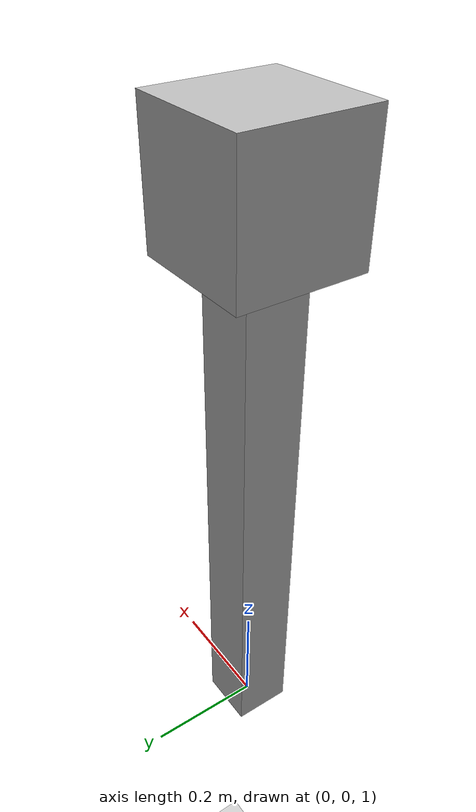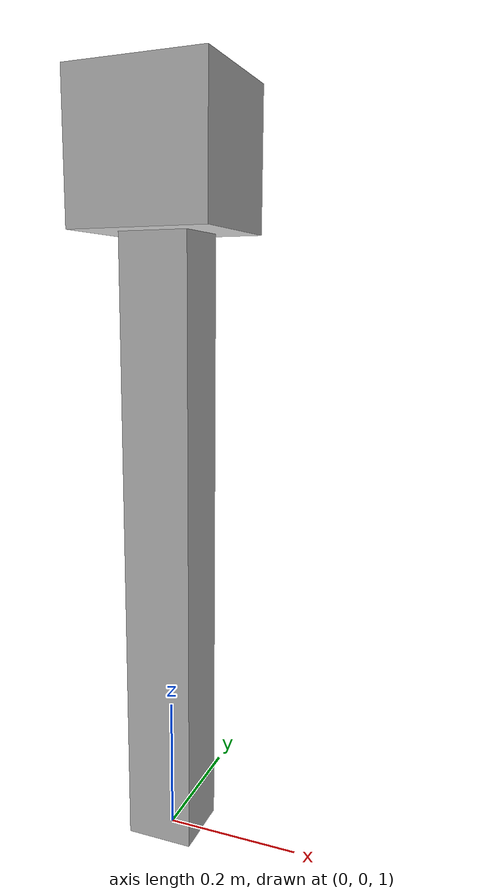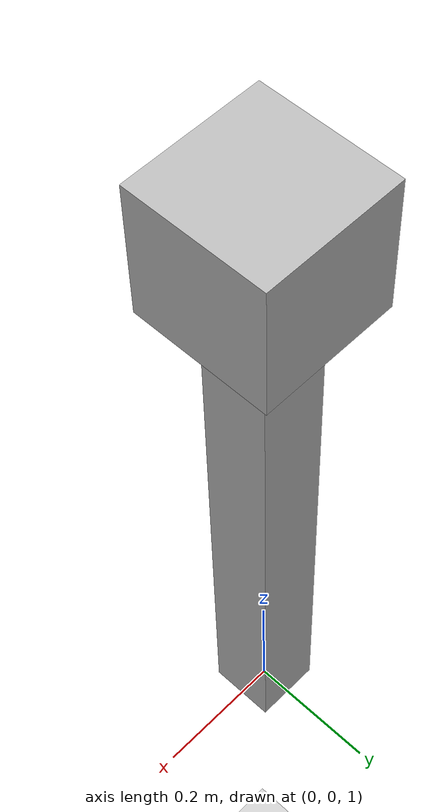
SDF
<?xml version="1.0"?>
<sdf version="1.7">
  <world name="empty">
    <physics name="1ms" type="ignored">
      <max_step_size>0.02</max_step_size>
      <real_time_factor>1.0</real_time_factor>
    </physics>
    <plugin filename="ignition-gazebo-physics-system" name="ignition::gazebo::systems::Physics"></plugin>
    <plugin filename="ignition-gazebo-scene-broadcaster-system" name="ignition::gazebo::systems::SceneBroadcaster"></plugin>
    <plugin filename="ignition-gazebo-user-commands-system" name="ignition::gazebo::systems::UserCommands"></plugin>
    <light type="directional" name="sun">
      <cast_shadows>false</cast_shadows>
      <pose>0 0 10 0 0 0</pose>
      <diffuse>0.8 0.8 0.8 1</diffuse>
      <direction>-0.5 0.1 -0.9</direction>
    </light>
    <model name="ground_plane">
      <static>true</static>
      <link name="link">
        <collision name="collision">
          <geometry><plane><normal>0 0 1</normal></plane></geometry>
        </collision>
        <visual name="visual">
          <geometry><plane><normal>0 0 1</normal><size>10 10</size></plane></geometry>
        </visual>
      </link>
    </model>

    <model name="pendulum">
      <pose>0 0 2 0 0 0</pose>
      <link name="base">
        <inertial><mass>1</mass><inertia><ixx>0.006667</ixx><iyy>0.006667</iyy><izz>0.006667</izz></inertia></inertial>
        <visual name="v"><geometry><box><size>0.2 0.2 0.2</size></box></geometry></visual>
        <collision name="c"><geometry><box><size>0.2 0.2 0.2</size></box></geometry></collision>
      </link>
      <link name="arm">
        <pose>0 0 -0.5 0 0 0</pose>
        <inertial><mass>1</mass><inertia><ixx>0.084167</ixx><iyy>0.084167</iyy><izz>0.001667</izz></inertia></inertial>
        <visual name="v"><geometry><box><size>0.1 0.1 1.0</size></box></geometry></visual>
        <collision name="c"><geometry><box><size>0.1 0.1 1.0</size></box></geometry></collision>
      </link>
      <joint name="joint1" type="revolute">
        <parent>base</parent>
        <child>arm</child>
        <axis>
          <xyz>0 1 0</xyz>
          <limit><lower>-3.14</lower><upper>3.14</upper><effort>50</effort></limit>
        </axis>
      </joint>
      <plugin filename="ignition-gazebo-joint-controller-system"
              name="ignition::gazebo::systems::JointController">
        <joint_name>joint1</joint_name>
        <initial_velocity>0</initial_velocity>
      </plugin>
      <plugin filename="ignition-gazebo-joint-state-publisher-system"
              name="ignition::gazebo::systems::JointStatePublisher">
      </plugin>
    </model>
  </world>
</sdf>
